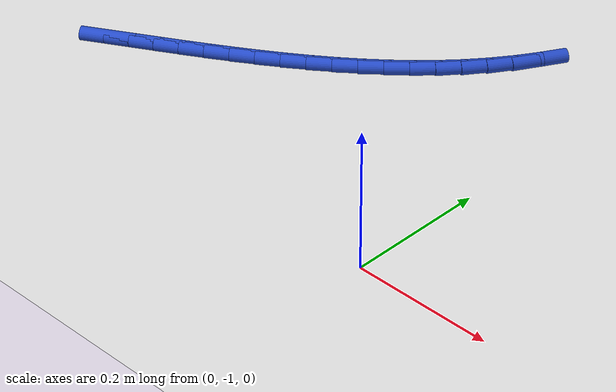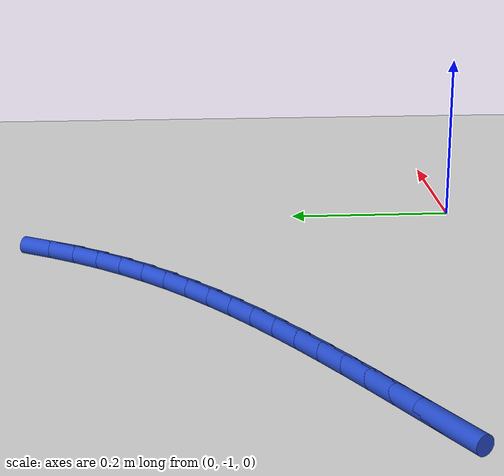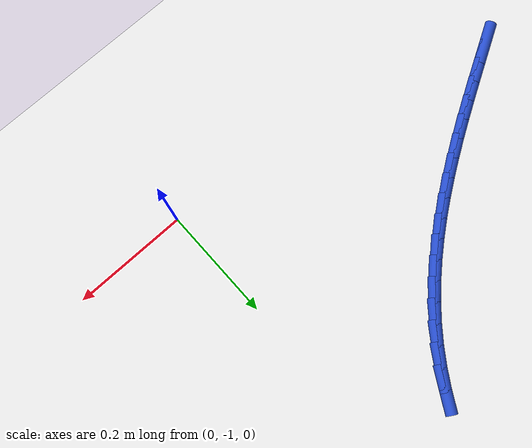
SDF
<sdf version="1.6">
 <world name="default">
  <model name="ground_plane">
   <static>1</static>
   <link name="link">
    <collision name="collision">
     <geometry><plane><normal>0 0 1</normal><size>100 100</size></plane></geometry>
     <surface><friction><ode><mu>100</mu><mu2>50</mu2></ode></friction></surface>
    </collision>
    <visual name="visual">
     <cast_shadows>0</cast_shadows>
     <geometry><plane><normal>0 0 1</normal><size>100 100</size></plane></geometry>
     <material>
      <script><uri>file://media/materials/scripts/gazebo.material</uri><name>Gazebo/WhiteGlow</name></script>
     </material>
    </visual>
   </link>
  </model>
  <model name="line">
   <link name="link_178">
    <pose>-0.5970815772430558 -0.8779176554105746 0.01 0 1.57 0.5171982651150686</pose>
    <collision name="collision">
     <geometry><cylinder><radius>0.01</radius><length>0.08</length></cylinder></geometry>
    </collision>
    <visual name="visual">
     <material>
      <script><name>Gazebo/Blue</name><uri>file://media/materials/scripts/gazebo.material</uri></script>
     </material>
     <geometry><cylinder><radius>0.01</radius><length>0.08</length></cylinder></geometry>
    </visual>
   </link>
   <link name="link_179">
    <pose>-0.566095742295394 -0.8602914388222727 0.01 0 1.57 0.5178852005887795</pose>
    <collision name="collision">
     <geometry><cylinder><radius>0.01</radius><length>0.08</length></cylinder></geometry>
    </collision>
    <visual name="visual">
     <material>
      <script><name>Gazebo/Blue</name><uri>file://media/materials/scripts/gazebo.material</uri></script>
     </material>
     <geometry><cylinder><radius>0.01</radius><length>0.08</length></cylinder></geometry>
    </visual>
   </link>
   <link name="link_180">
    <pose>-0.5350036319679066 -0.8425764871432491 0.01 0 1.57 0.5223229676644439</pose>
    <collision name="collision">
     <geometry><cylinder><radius>0.01</radius><length>0.08</length></cylinder></geometry>
    </collision>
    <visual name="visual">
     <material>
      <script><name>Gazebo/Blue</name><uri>file://media/materials/scripts/gazebo.material</uri></script>
     </material>
     <geometry><cylinder><radius>0.01</radius><length>0.08</length></cylinder></geometry>
    </visual>
   </link>
   <link name="link_181">
    <pose>-0.503921952520805 -0.8246843045974249 0.01 0 1.57 0.5305076802063773</pose>
    <collision name="collision">
     <geometry><cylinder><radius>0.01</radius><length>0.08</length></cylinder></geometry>
    </collision>
    <visual name="visual">
     <material>
      <script><name>Gazebo/Blue</name><uri>file://media/materials/scripts/gazebo.material</uri></script>
     </material>
     <geometry><cylinder><radius>0.01</radius><length>0.08</length></cylinder></geometry>
    </visual>
   </link>
   <link name="link_182">
    <pose>-0.4729674102143008 -0.806526395408721 0.01 0 1.57 0.5424691484980605</pose>
    <collision name="collision">
     <geometry><cylinder><radius>0.01</radius><length>0.08</length></cylinder></geometry>
    </collision>
    <visual name="visual">
     <material>
      <script><name>Gazebo/Blue</name><uri>file://media/materials/scripts/gazebo.material</uri></script>
     </material>
     <geometry><cylinder><radius>0.01</radius><length>0.08</length></cylinder></geometry>
    </visual>
   </link>
   <link name="link_183">
    <pose>-0.44225671130860533 -0.7880142638010578 0.01 0 1.57 0.5582676922945852</pose>
    <collision name="collision">
     <geometry><cylinder><radius>0.01</radius><length>0.08</length></cylinder></geometry>
    </collision>
    <visual name="visual">
     <material>
      <script><name>Gazebo/Blue</name><uri>file://media/materials/scripts/gazebo.material</uri></script>
     </material>
     <geometry><cylinder><radius>0.01</radius><length>0.08</length></cylinder></geometry>
    </visual>
   </link>
   <link name="link_184">
    <pose>-0.41190656206393156 -0.7690594139983569 0.01 0 1.57 0.5779898170947892</pose>
    <collision name="collision">
     <geometry><cylinder><radius>0.01</radius><length>0.08</length></cylinder></geometry>
    </collision>
    <visual name="visual">
     <material>
      <script><name>Gazebo/Blue</name><uri>file://media/materials/scripts/gazebo.material</uri></script>
     </material>
     <geometry><cylinder><radius>0.01</radius><length>0.08</length></cylinder></geometry>
    </visual>
   </link>
   <link name="link_185">
    <pose>-0.3820336687404905 -0.7495733502245389 0.01 0 1.57 0.6017423174285594</pose>
    <collision name="collision">
     <geometry><cylinder><radius>0.01</radius><length>0.08</length></cylinder></geometry>
    </collision>
    <visual name="visual">
     <material>
      <script><name>Gazebo/Blue</name><uri>file://media/materials/scripts/gazebo.material</uri></script>
     </material>
     <geometry><cylinder><radius>0.01</radius><length>0.08</length></cylinder></geometry>
    </visual>
   </link>
   <link name="link_186">
    <pose>-0.35275473759849385 -0.7294675767035242 0.01 0 1.57 0.6296442468916833</pose>
    <collision name="collision">
     <geometry><cylinder><radius>0.01</radius><length>0.08</length></cylinder></geometry>
    </collision>
    <visual name="visual">
     <material>
      <script><name>Gazebo/Blue</name><uri>file://media/materials/scripts/gazebo.material</uri></script>
     </material>
     <geometry><cylinder><radius>0.01</radius><length>0.08</length></cylinder></geometry>
    </visual>
   </link>
   <link name="link_187">
    <pose>-0.3241864748981532 -0.7086535976592339 0.01 0 1.57 0.6618161147098761</pose>
    <collision name="collision">
     <geometry><cylinder><radius>0.01</radius><length>0.08</length></cylinder></geometry>
    </collision>
    <visual name="visual">
     <material>
      <script><name>Gazebo/Blue</name><uri>file://media/materials/scripts/gazebo.material</uri></script>
     </material>
     <geometry><cylinder><radius>0.01</radius><length>0.08</length></cylinder></geometry>
    </visual>
   </link>
   <link name="link_188">
    <pose>-0.2964455868996803 -0.6870429173155886 0.01 0 1.57 0.6983656792309633</pose>
    <collision name="collision">
     <geometry><cylinder><radius>0.01</radius><length>0.08</length></cylinder></geometry>
    </collision>
    <visual name="visual">
     <material>
      <script><name>Gazebo/Blue</name><uri>file://media/materials/scripts/gazebo.material</uri></script>
     </material>
     <geometry><cylinder><radius>0.01</radius><length>0.08</length></cylinder></geometry>
    </visual>
   </link>
   <link name="link_189">
    <pose>-0.2696487798632863 -0.6645470398965089 0.01 0 1.57 0.7393698819603228</pose>
    <collision name="collision">
     <geometry><cylinder><radius>0.01</radius><length>0.08</length></cylinder></geometry>
    </collision>
    <visual name="visual">
     <material>
      <script><name>Gazebo/Blue</name><uri>file://media/materials/scripts/gazebo.material</uri></script>
     </material>
     <geometry><cylinder><radius>0.01</radius><length>0.08</length></cylinder></geometry>
    </visual>
   </link>
   <link name="link_190">
    <pose>-0.24391276004918397 -0.6410774696259164 0.01 0 1.57 0.7848528939895308</pose>
    <collision name="collision">
     <geometry><cylinder><radius>0.01</radius><length>0.08</length></cylinder></geometry>
    </collision>
    <visual name="visual">
     <material>
      <script><name>Gazebo/Blue</name><uri>file://media/materials/scripts/gazebo.material</uri></script>
     </material>
     <geometry><cylinder><radius>0.01</radius><length>0.08</length></cylinder></geometry>
    </visual>
   </link>
   <link name="link_191">
    <pose>-0.21935423371758458 -0.6165457107277316 0.01 0 1.57 0.8347610188237121</pose>
    <collision name="collision">
     <geometry><cylinder><radius>0.01</radius><length>0.08</length></cylinder></geometry>
    </collision>
    <visual name="visual">
     <material>
      <script><name>Gazebo/Blue</name><uri>file://media/materials/scripts/gazebo.material</uri></script>
     </material>
     <geometry><cylinder><radius>0.01</radius><length>0.08</length></cylinder></geometry>
    </visual>
   </link>
   <link name="link_192">
    <pose>-0.19608990712869964 -0.5908632674258746 0.01 0 1.57 0.8889363435452244</pose>
    <collision name="collision">
     <geometry><cylinder><radius>0.01</radius><length>0.08</length></cylinder></geometry>
    </collision>
    <visual name="visual">
     <material>
      <script><name>Gazebo/Blue</name><uri>file://media/materials/scripts/gazebo.material</uri></script>
     </material>
     <geometry><cylinder><radius>0.01</radius><length>0.08</length></cylinder></geometry>
    </visual>
   </link>
   <link name="link_193">
    <pose>-0.174236486542741 -0.5639416439442673 0.01 0 1.57 0.9458893595125328</pose>
    <collision name="collision">
     <geometry><cylinder><radius>0.01</radius><length>0.08</length></cylinder></geometry>
    </collision>
    <visual name="visual">
     <material>
      <script><name>Gazebo/Blue</name><uri>file://media/materials/scripts/gazebo.material</uri></script>
     </material>
     <geometry><cylinder><radius>0.01</radius><length>0.08</length></cylinder></geometry>
    </visual>
   </link>
   <link name="link_194">
    <pose>-0.1538840072395185 -0.5357269394690447 0.01 0 1.57 1.0002557434702717</pose>
    <collision name="collision">
     <geometry><cylinder><radius>0.01</radius><length>0.08</length></cylinder></geometry>
    </collision>
    <visual name="visual">
     <material>
      <script><name>Gazebo/Blue</name><uri>file://media/materials/scripts/gazebo.material</uri></script>
     </material>
     <geometry><cylinder><radius>0.01</radius><length>0.08</length></cylinder></geometry>
    </visual>
   </link>
   <link name="link_195">
    <pose>-0.13500835726335225 -0.5063133137090244 0.01 0 1.57 1.0507351741923703</pose>
    <collision name="collision">
     <geometry><cylinder><radius>0.01</radius><length>0.08</length></cylinder></geometry>
    </collision>
    <visual name="visual">
     <material>
      <script><name>Gazebo/Blue</name><uri>file://media/materials/scripts/gazebo.material</uri></script>
     </material>
     <geometry><cylinder><radius>0.01</radius><length>0.08</length></cylinder></geometry>
    </visual>
   </link>
  </model>
 </world>
</sdf>
